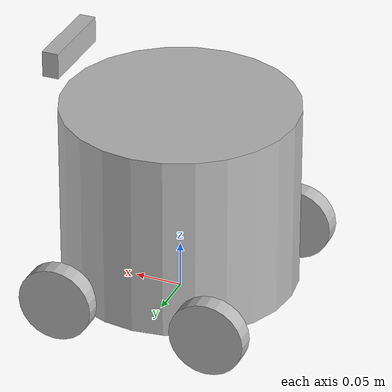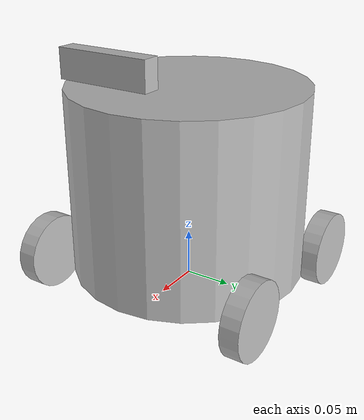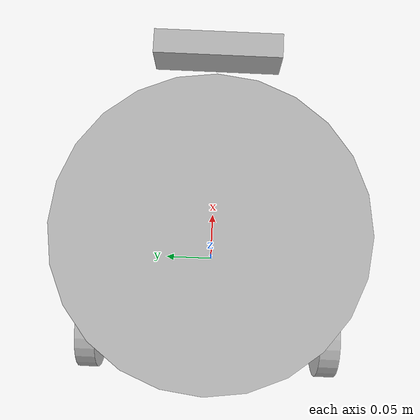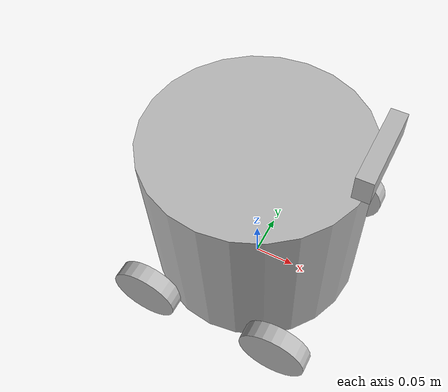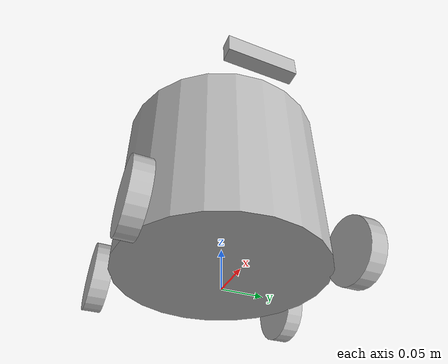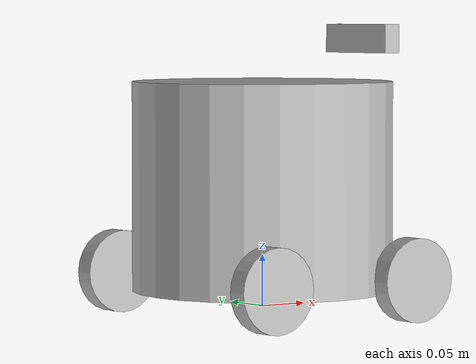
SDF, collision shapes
<?xml version="1.0" encoding="UTF-8"?>
<sdf version='1.9'>
  <model name='firebird_vi_OakD-Lite'>
    <include merge='true'>
      <uri>package://robot_description/models/firebird_vi</uri>
    </include>
    <include merge='true'>
      <uri>package://robot_description/models/OakD-Lite</uri>
      <pose>.12 .03 .242 0 0 0</pose>
    </include>
    <joint name="CameraJoint" type="fixed">
      <parent>base_link</parent>
      <child>OakD-Lite/base_link</child>
      <pose relative_to="base_link">.12 .03 .242 0 0 0</pose>
    </joint>
  </model>
</sdf>

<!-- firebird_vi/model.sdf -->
<sdf version="1.10">
    <model name="firebird_vi">

        <link name="base_link">
            <pose> 0.0 0.0 0.016 0 0 0 </pose>
            <visual name='visual'>
                <geometry>
                    <mesh>
                        <uri>package://robot_description/meshes/firebird_vi.obj</uri>
                    </mesh>
                </geometry>
            </visual>
            <collision name="collision">
            <pose> 0 0 0.1 0 0 0</pose>
                <geometry>
                    <cylinder>
                        <radius> 0.125 </radius>
                        <length> 0.20 </length>
                    </cylinder>
                </geometry>
            </collision>
            <inertial>
                <pose> 0 0 0.046498 0 0 0 </pose>
                <mass>10</mass>
                <inertia>
                    <ixx>1.765E-02</ixx>
                    <ixy>-2.217E-17</ixy>
                    <ixz>-2.225197E-06</ixz>
                    <iyy>1.663E-02</iyy>
                    <iyz>2.217E-17</iyz>
                    <izz>1.932E-02</izz>
                </inertia>
            </inertial>
        </link>

        <link name="front_right_wheel">
            <pose> 0.0835 -0.37975 0.03 0 0 0 </pose>
            <visual name='visual'>
                <geometry>
                    <mesh>
                        <uri>package://robot_description/meshes/firebird_wheel.obj</uri>
                    </mesh>
                </geometry>
            </visual>
            <collision name="collision">
            <pose> 0 0.255875 0 1.57 0 0</pose>
                <geometry>
                    <cylinder>
                        <radius> 0.04 </radius>
                        <length> 0.02 </length>
                    </cylinder>
                </geometry>
                <surface>
                    <friction>
                        <ode>
                            <mu>1</mu>
                            <mu2>1</mu2>
                            <slip1>0.035</slip1>
                            <slip2>0</slip2>
                            <fdir1>0 0 1</fdir1>
                        </ode>
                    </friction>
                </surface>
            </collision>
            <inertial>
                <pose> 0 0.256506 0 0 0 0 </pose>
                <mass>0.1</mass>
                    <inertia>
                    <ixx>0.000043333</ixx>
                    <ixy>0</ixy>
                    <ixz>0</ixz>
                    <iyy>0.00008</iyy>
                    <iyz>0</iyz>
                    <izz>0.000043333</izz>
                </inertia>
            </inertial>
        </link>

        <link name="front_left_wheel">
            <pose> 0.0835 -0.13325 0.03 0 0 0</pose>
            <visual name='visual'>
                <geometry>
                    <mesh>
                        <uri>package://robot_description/meshes/firebird_wheel.obj</uri>
                    </mesh>
                </geometry>
            </visual>
            <collision name="collision">
            <pose> 0 0.255875 0 1.57 0 0</pose>
                <geometry>
                    <cylinder>
                        <radius> 0.04 </radius>
                        <length> 0.02 </length>
                    </cylinder>
                </geometry>
                <surface>
                    <friction>
                    <ode>
                        <mu>1</mu>
                        <mu2>1</mu2>
                        <slip1>0.035</slip1>
                        <slip2>0</slip2>
                        <fdir1>0 0 1</fdir1>
                    </ode>
                    <bullet>
                        <friction>1</friction>
                        <friction2>1</friction2>
                        <rolling_friction>0.1</rolling_friction>
                        <spinning_friction>0.1</spinning_friction>
                    </bullet>
                    </friction>
                </surface>
            </collision>
            <inertial>
                <pose> 0 0.256506 0 0 0 0 </pose>
                <mass>0.1</mass>
                    <inertia>
                    <ixx>0.000043333</ixx>
                    <ixy>0</ixy>
                    <ixz>0</ixz>
                    <iyy>0.00008</iyy>
                    <iyz>0</iyz>
                    <izz>0.000043333</izz>
                </inertia>
            </inertial>
        </link>

        <link name="rear_right_wheel">
            <pose>-0.0835 -0.37975 0.03 0 0 0</pose>
            <visual name='visual'>
                <geometry>
                    <mesh>
                        <uri>package://robot_description/meshes/firebird_wheel.obj</uri>
                    </mesh>
                </geometry>
            </visual>
            <collision name="collision">
            <pose> 0 0.255875 0 1.57 0 0</pose>
                <geometry>
                    <cylinder>
                        <radius> 0.04 </radius>
                        <length> 0.02 </length>
                    </cylinder>
                </geometry>
                <surface>
                    <friction>
                    <ode>
                        <mu>1</mu>
                        <mu2>1</mu2>
                        <slip1>0.035</slip1>
                        <slip2>0</slip2>
                        <fdir1>0 0 1</fdir1>
                    </ode>
                    <bullet>
                        <friction>1</friction>
                        <friction2>1</friction2>
                        <rolling_friction>0.1</rolling_friction>
                        <spinning_friction>0.1</spinning_friction>
                    </bullet>
                    </friction>
                </surface>
            </collision>
            <inertial>
                <pose> 0 0.256506 0 0 0 0 </pose>
                <mass>0.1</mass>
                    <inertia>
                    <ixx>0.000043333</ixx>
                    <ixy>0</ixy>
                    <ixz>0</ixz>
                    <iyy>0.00008</iyy>
                    <iyz>0</iyz>
                    <izz>0.000043333</izz>
                </inertia>
            </inertial>
        </link>

        <link name="rear_left_wheel">
            <pose>-0.0835 -0.13325 0.03 0 0 0</pose>
            <visual name='visual'>
                <geometry>
                    <mesh>
                        <uri>package://robot_description/meshes/firebird_wheel.obj</uri>
                    </mesh>
                </geometry>
            </visual>
            <collision name="collision">
            <pose> 0 0.255875 0 1.57 0 0</pose>
                <geometry>
                    <cylinder>
                        <radius> 0.04 </radius>
                        <length> 0.02 </length>
                    </cylinder>
                </geometry>
            </collision>
            <surface>
                    <friction>
                    <ode>
                        <mu>1</mu>
                        <mu2>1</mu2>
                        <slip1>0.035</slip1>
                        <slip2>0</slip2>
                        <fdir1>0 0 1</fdir1>
                    </ode>
                    <bullet>
                        <friction>1</friction>
                        <friction2>1</friction2>
                        <rolling_friction>0.1</rolling_friction>
                        <spinning_friction>0.1</spinning_friction>
                    </bullet>
                    </friction>
                </surface>
            <inertial>
                <pose> 0 0.256506 0 0 0 0 </pose>
                <mass>0.1</mass>
                    <inertia>
                    <ixx>0.000043333</ixx>
                    <ixy>0</ixy>
                    <ixz>0</ixz>
                    <iyy>0.00008</iyy>
                    <iyz>0</iyz>
                    <izz>0.000043333</izz>
                </inertia>
            </inertial>
        </link>

        <joint name='front_left' type='revolute'>
            <pose> 0 0.256506 0 0 0 0</pose>
            <parent>base_link</parent>
            <child>front_left_wheel</child>
            <axis>
                <xyz expressed_in='__model__'>0 1 0</xyz>
                <limit>
                    <lower>-1.79769e+308</lower>    <!--negative infinity-->
                    <upper>1.79769e+308</upper>     <!--positive infinity-->
                </limit>
            </axis>
        </joint>

        <joint name='front_right' type='revolute'>
            <pose> 0 0.256506 0 0 0 0</pose>
            <parent>base_link</parent>
            <child>front_right_wheel</child>
            <axis>
                <xyz expressed_in='__model__'>0 1 0</xyz>
                <limit>
                    <lower>-1.79769e+308</lower>    <!--negative infinity-->
                    <upper>1.79769e+308</upper>     <!--positive infinity-->
                </limit>
            </axis>
        </joint>

        <joint name='rear_left' type='revolute'>
            <pose> 0 0.256506 0 0 0 0</pose>
            <parent>base_link</parent>
            <child>rear_left_wheel</child>
            <axis>
                <xyz expressed_in='__model__'>0 1 0</xyz>
                <limit>
                    <lower>-1.79769e+308</lower>    <!--negative infinity-->
                    <upper>1.79769e+308</upper>     <!--positive infinity-->
                </limit>
            </axis>
        </joint>

        <joint name='rear_right' type='revolute'>
            <pose> 0 0.256506 0 0 0 0</pose>
            <parent>base_link</parent>
            <child>rear_right_wheel</child>
            <axis>
                <xyz expressed_in='__model__'>0 1 0</xyz>
                <limit>
                    <lower>-1.79769e+308</lower>    <!--negative infinity-->
                    <upper>1.79769e+308</upper>     <!--positive infinity-->
                </limit>
            </axis>
        </joint>

        <plugin filename="gz-sim-diff-drive-system" name="gz::sim::systems::DiffDrive">
            <left_joint>rear_left</left_joint>
            <left_joint>front_left</left_joint>
            <right_joint>rear_right</right_joint>
            <right_joint>front_right</right_joint>
            <wheel_separation>0.2465</wheel_separation>
            <wheel_radius>0.04</wheel_radius>
            <odom_publish_frequency>1</odom_publish_frequency>
            <max_linear_acceleration>1</max_linear_acceleration>
            <min_linear_acceleration>-1</min_linear_acceleration>
            <max_angular_acceleration>2</max_angular_acceleration>
            <min_angular_acceleration>-2</min_angular_acceleration>
            <max_linear_velocity>0.5</max_linear_velocity>
            <min_linear_velocity>-0.5</min_linear_velocity>
            <max_angular_velocity>1</max_angular_velocity>
            <min_angular_velocity>-1</min_angular_velocity>
            <topic>cmd_vel</topic>
        </plugin>

        <plugin
            filename="gz-sim-joint-state-publisher-system"
            name="gz::sim::systems::JointStatePublisher">
        </plugin>

        <plugin
            filename="gz-sim-pose-publisher-system"
            name="gz::sim::systems::PosePublisher">
            <publish_link_pose>true</publish_link_pose>
            <use_pose_vector_msg>true</use_pose_vector_msg>
            <static_publisher>true</static_publisher>
            <static_update_frequency>1</static_update_frequency>
        </plugin>

        <plugin
            filename="gz-sim-odometry-publisher-system"
            name="gz::sim::systems::OdometryPublisher">
            <odom_frame>odom</odom_frame>
            <robot_base_frame>base_link</robot_base_frame>
        </plugin>

    </model>
</sdf>

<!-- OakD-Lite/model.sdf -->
<sdf version='1.9'>
  <model name='OakD-Lite'>
    <pose>0 0 0 0 0 0</pose>
    <self_collide>false</self_collide>
    <static>false</static>
    <link name="OakD-Lite/base_link">
      <inertial>
        <pose>0.00358 -0.03 .014 0 0 0</pose>
        <mass>0.061</mass>
        <inertia>
          <ixx>0.0000460804</ixx>
          <ixy>0</ixy>
          <ixz>0</ixz>
          <iyy>0.0000055421</iyy>
          <iyz>0</iyz>
          <izz>0.0000436519</izz>
        </inertia>
      </inertial>
      <visual name="OakD-Lite/visual">
        <pose>0 0 0 0 0 0</pose>
        <geometry>
          <mesh>
            <scale>1 1 1</scale>
            <uri>model://robot_description/models/OakD-Lite/meshes/OakDLite.dae</uri>
          </mesh>
        </geometry>
      </visual>
      <collision name="OakD-Lite/collision">
        <pose>0.00358 -0.03 .014 0 0 0</pose>
        <geometry>
          <box>
            <size>0.0175 0.091 0.028</size>
          </box>
        </geometry>
      </collision>
      <sensor name="IMX214" type="camera">
        <pose>0.01233 -0.03 .01878 0 0 0</pose>
        <camera>
          <camera_info_topic>rgb_info</camera_info_topic>
          <horizontal_fov>1.204</horizontal_fov>
          <image>
            <width>1280</width>
            <height>720</height>
          </image>
          <clip>
            <near>0.1</near>
            <far>100</far>
          </clip>
        </camera>
        <always_on>1</always_on>
        <update_rate>30</update_rate>
        <visualize>true</visualize>
        <topic>camera</topic>
        <enable_metrics>true</enable_metrics>
      </sensor>
      <sensor name="StereoOV7251" type="depth_camera">
        <pose>0.01233 -0.03 .01878 0 0 0</pose>
        <camera>
          <horizontal_fov>1.274</horizontal_fov>
          <image>
            <width>1280</width>
            <height>720</height>
            <format>R_FLOAT32</format>
          </image>
          <clip>
            <near>0.2</near>
            <far>19.1</far>
          </clip>
        </camera>
        <always_on>1</always_on>
        <update_rate>30</update_rate>
        <visualize>true</visualize>
        <topic>depth_camera</topic>
      </sensor>
      <gravity>true</gravity>
      <velocity_decay/>
    </link>

  </model>
</sdf>
